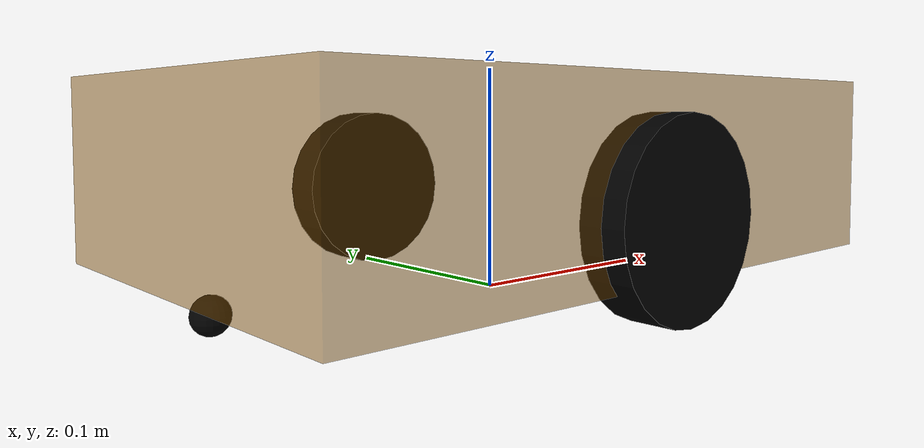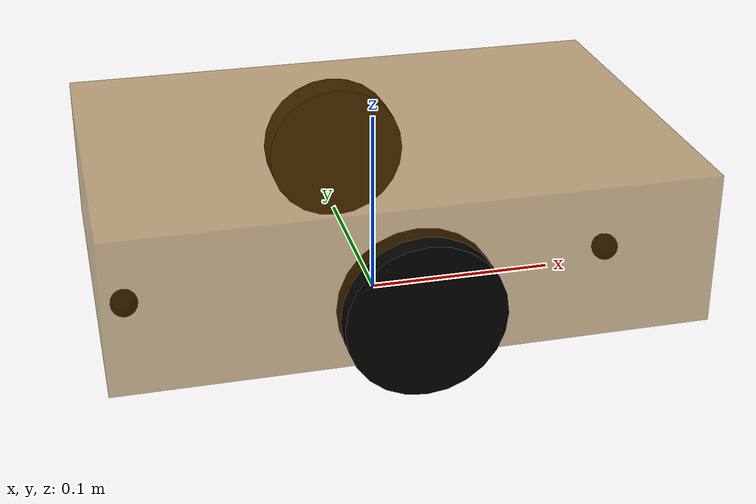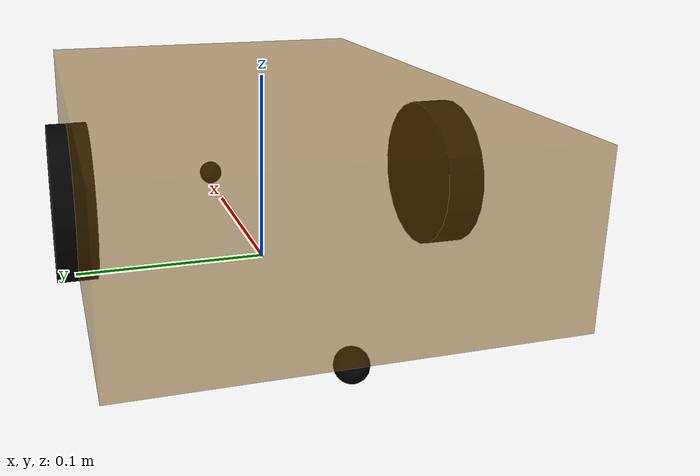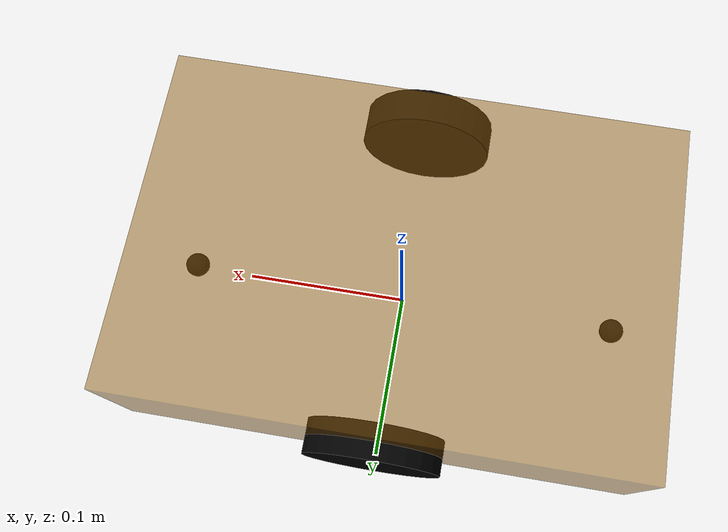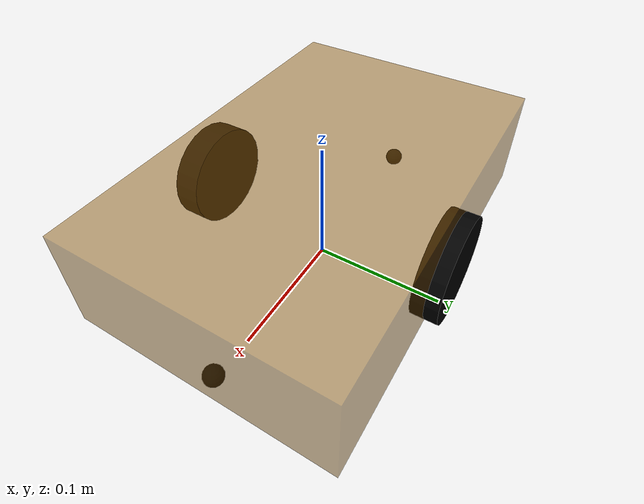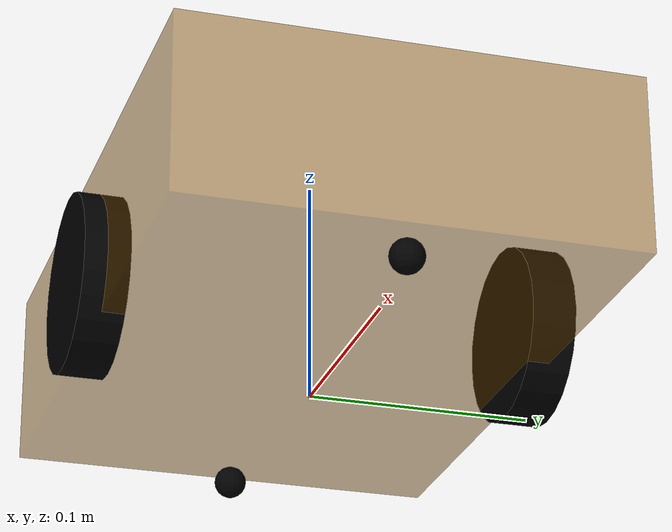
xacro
<!--
    使用 xacro 优化 URDF 版的小车底盘实现：

    实现思路:
    1.将一些常量、变量封装为 xacro:property
      比如:PI 值、小车底盘半径、离地间距、车轮半径、宽度 ....
    2.使用 宏 封装驱动轮以及支撑轮实现，调用相关宏生成驱动轮与支撑轮

-->
<!-- 根标签，必须声明 xmlns:xacro -->
<robot name="my_base" xmlns:xacro="http://www.ros.org/wiki/xacro">
  <!-- 封装变量、常量 -->
  <xacro:property name="PI" value="3.141"/>
  <!-- 宏:黑色设置 -->
  <material name="black">
    <color rgba="0.0 0.0 0.0 1.0" />
  </material>
  <!-- 底盘属性 -->
  <xacro:property name="base_footprint_radius" value="0.001" /> <!-- base_footprint 半径  -->
  <xacro:property name="base_link_length" value="0.3" /> <!-- base_link length -->
  <xacro:property name="base_link_width" value="0.2" /> <!-- base_link width -->
  <xacro:property name="base_link_height" value="0.08" /> <!-- base_link height -->
  <xacro:property name="earth_space" value="0.015" /> <!-- 离地间距 -->
  <xacro:property name="base_link_m" value="5" /> <!-- base_link quality-->

  <!-- 底盘 -->
  <link name="base_footprint">
    <visual>
      <geometry>
        <sphere radius="${base_footprint_radius}" />
      </geometry>
    </visual>
  </link>

  <link name="base_link">
    <visual>
      <geometry>
        <box size="${base_link_length} ${base_link_width} ${base_link_height}" />
      </geometry>
      <origin xyz="0 0 0" rpy="0 0 0" />
      <material name="yellow">
        <color rgba="0.5 0.3 0.0 0.5" />
      </material>
    </visual>
    <collision>
      <geometry>
        <box size="${base_link_length} ${base_link_width} ${base_link_height}" />
      </geometry>
      <origin xyz="0 0 0" rpy="0 0 0" />
    </collision>
    <xacro:Box_inertial_matrix m="${base_link_m}" l="${base_link_length}" w="${base_link_width}" h="${base_link_height}"/>
  </link>

  <joint name="base_link2base_footprint" type="fixed">
    <parent link="base_footprint" />
    <child link="base_link" />
    <origin xyz="0 0 ${earth_space + base_link_height / 2 }" />
  </joint>

  <gazebo reference="base_link">
    <material>Gazebo/Yellow</material>
  </gazebo>

  <!-- 驱动轮 -->
  <!-- 驱动轮属性 -->
  <xacro:property name="wheel_radius" value="0.04" /><!-- 半径 -->
  <xacro:property name="wheel_length" value="0.02" /><!-- 宽度 -->
  <xacro:property name="wheel_m" value="0.5" />
  <!-- 驱动轮宏实现 -->
  <xacro:macro name="add_wheels" params="name flag">
    <link name="${name}_wheel">
      <visual>
        <geometry>
          <cylinder radius="${wheel_radius}" length="${wheel_length}" />
        </geometry>
        <origin xyz="0.0 0.0 0.0" rpy="${PI / 2} 0.0 0.0" />
        <material name="black" />
      </visual>
      <collision>
        <geometry>
          <cylinder radius="${wheel_radius}" length="${wheel_length}" />
        </geometry>
        <origin xyz="0.0 0.0 0.0" rpy="${PI / 2} 0.0 0.0" />
      </collision>
      <xacro:cylinder_inertial_matrix m="${wheel_m}" r="${wheel_radius}" h="${wheel_length}" />
    </link>

    <joint name="${name}_wheel2base_link" type="continuous">
      <parent link="base_link" />
      <child link="${name}_wheel" />
      <origin xyz="0 ${flag * base_link_width / 2} ${-(earth_space + base_link_height / 2 - wheel_radius) }" />
      <axis xyz="0 1 0" />
    </joint>

    <gazebo reference="${name}_wheel">
      <material>Gazebo/Red</material>
    </gazebo>
  </xacro:macro>
  <xacro:add_wheels name="left" flag="1" />
  <xacro:add_wheels name="right" flag="-1" />
  <!-- 支撑轮 -->
  <!-- 支撑轮属性 -->
  <xacro:property name="support_wheel_radius" value="0.0075" /> <!-- 支撑轮半径 -->
  <xacro:property name="support_wheel_m" value="0.4" />

  <!-- 支撑轮宏 -->
  <xacro:macro name="add_support_wheel" params="name flag" >
    <link name="${name}_wheel">
      <visual>
        <geometry>
          <sphere radius="${support_wheel_radius}" />
        </geometry>
        <origin xyz="0 0 0" rpy="0 0 0" />
        <material name="black" />
      </visual>
      <collision>
        <geometry>
          <sphere radius="${support_wheel_radius}" />
        </geometry>
        <origin xyz="0 0 0" rpy="0 0 0" />
      </collision>
      <xacro:sphere_inertial_matrix m="${support_wheel_m}" r="${support_wheel_radius}" />
    </link>

    <joint name="${name}_wheel2base_link" type="continuous">
      <parent link="base_link" />
      <child link="${name}_wheel" />
      <origin xyz="${flag * (base_link_length / 2 - 2 * support_wheel_radius)} 0 ${-(base_link_height / 2 + earth_space / 2)}" />
      <axis xyz="1 1 1" />
    </joint>

    <gazebo reference="${name}_wheel">
      <material>Gazebo/Red</material>
    </gazebo>
  </xacro:macro>

  <xacro:add_support_wheel name="front" flag="1" />
  <xacro:add_support_wheel name="back" flag="-1" />

</robot>
